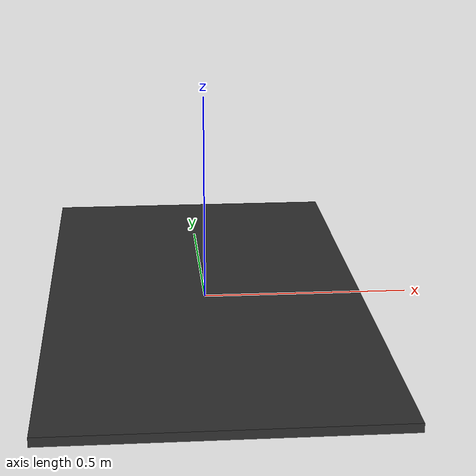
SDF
<?xml version="1.0"?>
<sdf version="1.7">
  <model name="metal_table">
    <link name="body">
      <visual name="table_visual">
        <pose> 0.0 0 0 0 0 1.57</pose>
        <geometry>
          <box>
            <size> 1.525 .763 0.02</size>
          </box>
        </geometry>
        <material>
          <diffuse>0.2 0.2 0.2 1.0</diffuse>
        </material>
      </visual>
      <collision name="table_top">
        <pose> 0.0 0 0 0 0 1.57</pose>
        <geometry>
          <box>
            <size> 1.525 .763 0.02</size>
          </box>
        </geometry>
          <drake:proximity_properties>
          <drake:compliant_hydroelastic/>
            <drake:hydroelastic_modulus>1.0e8</drake:hydroelastic_modulus>
        </drake:proximity_properties>
      </collision>
    </link>
  </model>
</sdf>
